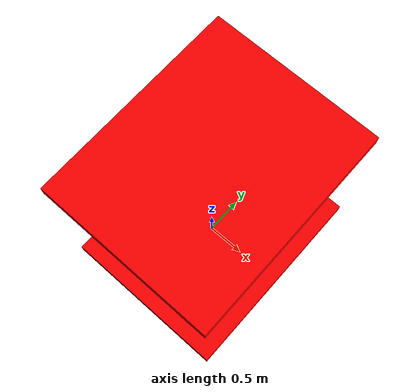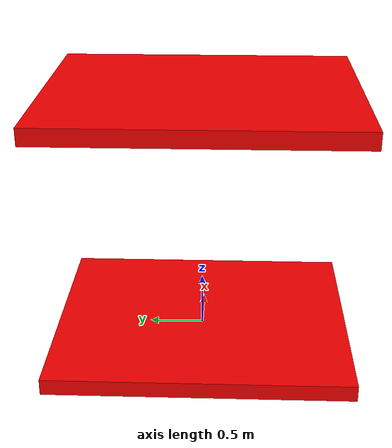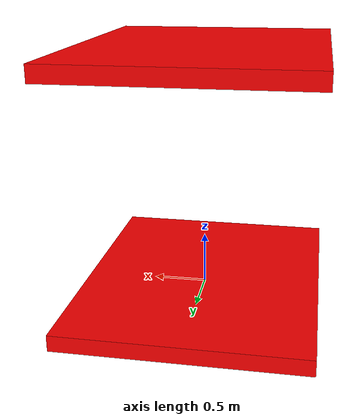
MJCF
<mujoco>
  <asset>
    <material name="block_mat" rgba="1.0 0 0 1.0" specular="0.25" shininess="0.10" reflectance="0.10"></material>
  </asset>
  <worldbody>
    <body name="jenga">
      <joint type="free"/>
      <geom type="box" size="1.125 1.375 .075" material="block_mat" />
      <geom type='box' size="1.125 1.375 .075" material="block_mat" quat='1 -0.1e-03  1.6e-03 0' pos='0 0 2.29'/>
    </body>
  </worldbody>
</mujoco>
